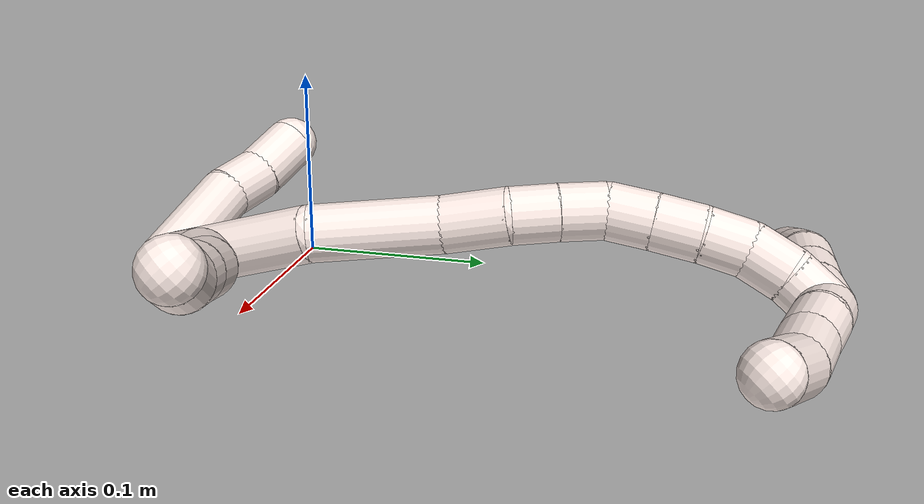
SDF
<sdf version="1.7">
 <world name="default">
  <model name="11">
   <static>0</static>
   <link name="11">
    <collision name="collision-cylinder-e_1_2_8">
     <pose>0.023417 0.009188 0.010127 -0.736849 1.04228 -0.436199</pose>
     <geometry><cylinder><radius>0.0125</radius><length>0.054235</length></cylinder></geometry>
     <surface>
      <friction><ode><mu>1.16</mu><mu2>1.16</mu2><slip1>0</slip1><slip2>0</slip2></ode></friction>
      <contact><ode><kp>1e+06</kp><kd>1</kd><max_vel>0</max_vel><min_depth>0.001</min_depth></ode></contact>
     </surface>
    </collision>
    <visual name="visual-cylinder-e_1_2_8">
     <pose>0.023417 0.009188 0.010127 -0.736849 1.04228 -0.436199</pose>
     <geometry><cylinder><radius>0.0125</radius><length>0.054235</length></cylinder></geometry>
     <material><ambient>1 0.933333 0.909804 1</ambient></material>
    </visual>
    <collision name="collision-cylinder-e_2_8_9">
     <pose>0.059232 0.023002 0.021881 -1.23251 1.19417 -0.897525</pose>
     <geometry><cylinder><radius>0.0125</radius><length>0.026663</length></cylinder></geometry>
     <surface>
      <friction><ode><mu>1.16</mu><mu2>1.16</mu2><slip1>0</slip1><slip2>0</slip2></ode></friction>
      <contact><ode><kp>1e+06</kp><kd>1</kd><max_vel>0</max_vel><min_depth>0.001</min_depth></ode></contact>
     </surface>
    </collision>
    <visual name="visual-cylinder-e_2_8_9">
     <pose>0.059232 0.023002 0.021881 -1.23251 1.19417 -0.897525</pose>
     <geometry><cylinder><radius>0.0125</radius><length>0.026663</length></cylinder></geometry>
     <material><ambient>1 0.933333 0.909804 1</ambient></material>
    </visual>
    <collision name="collision-cylinder-e_3_9_10">
     <pose>0.085764 0.029471 0.023245 -1.71219 1.43975 -1.58124</pose>
     <geometry><cylinder><radius>0.0125</radius><length>0.028516</length></cylinder></geometry>
     <surface>
      <friction><ode><mu>1.16</mu><mu2>1.16</mu2><slip1>0</slip1><slip2>0</slip2></ode></friction>
      <contact><ode><kp>1e+06</kp><kd>1</kd><max_vel>0</max_vel><min_depth>0.001</min_depth></ode></contact>
     </surface>
    </collision>
    <visual name="visual-cylinder-e_3_9_10">
     <pose>0.085764 0.029471 0.023245 -1.71219 1.43975 -1.58124</pose>
     <geometry><cylinder><radius>0.0125</radius><length>0.028516</length></cylinder></geometry>
     <material><ambient>1 0.933333 0.909804 1</ambient></material>
    </visual>
    <collision name="collision-cylinder-e_4_10_11">
     <pose>0.109905 0.032852 0.022522 -1.86215 1.41186 -1.70633</pose>
     <geometry><cylinder><radius>0.0125</radius><length>0.020265</length></cylinder></geometry>
     <surface>
      <friction><ode><mu>1.16</mu><mu2>1.16</mu2><slip1>0</slip1><slip2>0</slip2></ode></friction>
      <contact><ode><kp>1e+06</kp><kd>1</kd><max_vel>0</max_vel><min_depth>0.001</min_depth></ode></contact>
     </surface>
    </collision>
    <visual name="visual-cylinder-e_4_10_11">
     <pose>0.109905 0.032852 0.022522 -1.86215 1.41186 -1.70633</pose>
     <geometry><cylinder><radius>0.0125</radius><length>0.020265</length></cylinder></geometry>
     <material><ambient>1 0.933333 0.909804 1</ambient></material>
    </visual>
    <collision name="collision-cylinder-e_5_11_6">
     <pose>0.129947 0.033937 0.023573 0.289941 1.41489 0.248394</pose>
     <geometry><cylinder><radius>0.0125</radius><length>0.020322</length></cylinder></geometry>
     <surface>
      <friction><ode><mu>1.16</mu><mu2>1.16</mu2><slip1>0</slip1><slip2>0</slip2></ode></friction>
      <contact><ode><kp>1e+06</kp><kd>1</kd><max_vel>0</max_vel><min_depth>0.001</min_depth></ode></contact>
     </surface>
    </collision>
    <visual name="visual-cylinder-e_5_11_6">
     <pose>0.129947 0.033937 0.023573 0.289941 1.41489 0.248394</pose>
     <geometry><cylinder><radius>0.0125</radius><length>0.020322</length></cylinder></geometry>
     <material><ambient>1 0.933333 0.909804 1</ambient></material>
    </visual>
    <collision name="collision-cylinder-e_1_2_12">
     <pose>-0.018052 -0.006687 0.017897 0.357565 -0.757036 -0.14349</pose>
     <geometry><cylinder><radius>0.0125</radius><length>0.05257</length></cylinder></geometry>
     <surface>
      <friction><ode><mu>1.16</mu><mu2>1.16</mu2><slip1>0</slip1><slip2>0</slip2></ode></friction>
      <contact><ode><kp>1e+06</kp><kd>1</kd><max_vel>0</max_vel><min_depth>0.001</min_depth></ode></contact>
     </surface>
    </collision>
    <visual name="visual-cylinder-e_1_2_12">
     <pose>-0.018052 -0.006687 0.017897 0.357565 -0.757036 -0.14349</pose>
     <geometry><cylinder><radius>0.0125</radius><length>0.05257</length></cylinder></geometry>
     <material><ambient>1 0.933333 0.909804 1</ambient></material>
    </visual>
    <collision name="collision-cylinder-e_2_12_13">
     <pose>-0.043166 -0.013362 0.043865 -0.001497 -0.71889 0.000562</pose>
     <geometry><cylinder><radius>0.0125</radius><length>0.021449</length></cylinder></geometry>
     <surface>
      <friction><ode><mu>1.16</mu><mu2>1.16</mu2><slip1>0</slip1><slip2>0</slip2></ode></friction>
      <contact><ode><kp>1e+06</kp><kd>1</kd><max_vel>0</max_vel><min_depth>0.001</min_depth></ode></contact>
     </surface>
    </collision>
    <visual name="visual-cylinder-e_2_12_13">
     <pose>-0.043166 -0.013362 0.043865 -0.001497 -0.71889 0.000562</pose>
     <geometry><cylinder><radius>0.0125</radius><length>0.021449</length></cylinder></geometry>
     <material><ambient>1 0.933333 0.909804 1</ambient></material>
    </visual>
    <collision name="collision-cylinder-e_3_13_5">
     <pose>-0.057547 -0.015377 0.062476 0.190037 -0.598411 -0.05878</pose>
     <geometry><cylinder><radius>0.0125</radius><length>0.025981</length></cylinder></geometry>
     <surface>
      <friction><ode><mu>1.16</mu><mu2>1.16</mu2><slip1>0</slip1><slip2>0</slip2></ode></friction>
      <contact><ode><kp>1e+06</kp><kd>1</kd><max_vel>0</max_vel><min_depth>0.001</min_depth></ode></contact>
     </surface>
    </collision>
    <visual name="visual-cylinder-e_3_13_5">
     <pose>-0.057547 -0.015377 0.062476 0.190037 -0.598411 -0.05878</pose>
     <geometry><cylinder><radius>0.0125</radius><length>0.025981</length></cylinder></geometry>
     <material><ambient>1 0.933333 0.909804 1</ambient></material>
    </visual>
    <collision name="collision-cylinder-e_1_2_14">
     <pose>0.010941 0.018292 0.029014 -0.5625 0.308799 -0.08987</pose>
     <geometry><cylinder><radius>0.0125</radius><length>0.072003</length></cylinder></geometry>
     <surface>
      <friction><ode><mu>1.16</mu><mu2>1.16</mu2><slip1>0</slip1><slip2>0</slip2></ode></friction>
      <contact><ode><kp>1e+06</kp><kd>1</kd><max_vel>0</max_vel><min_depth>0.001</min_depth></ode></contact>
     </surface>
    </collision>
    <visual name="visual-cylinder-e_1_2_14">
     <pose>0.010941 0.018292 0.029014 -0.5625 0.308799 -0.08987</pose>
     <geometry><cylinder><radius>0.0125</radius><length>0.072003</length></cylinder></geometry>
     <material><ambient>1 0.933333 0.909804 1</ambient></material>
    </visual>
    <collision name="collision-cylinder-e_2_14_15">
     <pose>0.022152 0.054064 0.08052 -0.660699 0.00946 -0.003244</pose>
     <geometry><cylinder><radius>0.0125</radius><length>0.056975</length></cylinder></geometry>
     <surface>
      <friction><ode><mu>1.16</mu><mu2>1.16</mu2><slip1>0</slip1><slip2>0</slip2></ode></friction>
      <contact><ode><kp>1e+06</kp><kd>1</kd><max_vel>0</max_vel><min_depth>0.001</min_depth></ode></contact>
     </surface>
    </collision>
    <visual name="visual-cylinder-e_2_14_15">
     <pose>0.022152 0.054064 0.08052 -0.660699 0.00946 -0.003244</pose>
     <geometry><cylinder><radius>0.0125</radius><length>0.056975</length></cylinder></geometry>
     <material><ambient>1 0.933333 0.909804 1</ambient></material>
    </visual>
    <collision name="collision-cylinder-e_3_15_16">
     <pose>0.024576 0.07972 0.114658 -0.612007 0.150253 -0.047549</pose>
     <geometry><cylinder><radius>0.0125</radius><length>0.028781</length></cylinder></geometry>
     <surface>
      <friction><ode><mu>1.16</mu><mu2>1.16</mu2><slip1>0</slip1><slip2>0</slip2></ode></friction>
      <contact><ode><kp>1e+06</kp><kd>1</kd><max_vel>0</max_vel><min_depth>0.001</min_depth></ode></contact>
     </surface>
    </collision>
    <visual name="visual-cylinder-e_3_15_16">
     <pose>0.024576 0.07972 0.114658 -0.612007 0.150253 -0.047549</pose>
     <geometry><cylinder><radius>0.0125</radius><length>0.028781</length></cylinder></geometry>
     <material><ambient>1 0.933333 0.909804 1</ambient></material>
    </visual>
    <collision name="collision-cylinder-e_4_16_17">
     <pose>0.025891 0.094047 0.134395 -0.650104 -0.082331 0.02776</pose>
     <geometry><cylinder><radius>0.0125</radius><length>0.0204</length></cylinder></geometry>
     <surface>
      <friction><ode><mu>1.16</mu><mu2>1.16</mu2><slip1>0</slip1><slip2>0</slip2></ode></friction>
      <contact><ode><kp>1e+06</kp><kd>1</kd><max_vel>0</max_vel><min_depth>0.001</min_depth></ode></contact>
     </surface>
    </collision>
    <visual name="visual-cylinder-e_4_16_17">
     <pose>0.025891 0.094047 0.134395 -0.650104 -0.082331 0.02776</pose>
     <geometry><cylinder><radius>0.0125</radius><length>0.0204</length></cylinder></geometry>
     <material><ambient>1 0.933333 0.909804 1</ambient></material>
    </visual>
    <collision name="collision-cylinder-e_5_17_18">
     <pose>0.023997 0.106586 0.150362 -0.681372 -0.103732 0.036803</pose>
     <geometry><cylinder><radius>0.0125</radius><length>0.020387</length></cylinder></geometry>
     <surface>
      <friction><ode><mu>1.16</mu><mu2>1.16</mu2><slip1>0</slip1><slip2>0</slip2></ode></friction>
      <contact><ode><kp>1e+06</kp><kd>1</kd><max_vel>0</max_vel><min_depth>0.001</min_depth></ode></contact>
     </surface>
    </collision>
    <visual name="visual-cylinder-e_5_17_18">
     <pose>0.023997 0.106586 0.150362 -0.681372 -0.103732 0.036803</pose>
     <geometry><cylinder><radius>0.0125</radius><length>0.020387</length></cylinder></geometry>
     <material><ambient>1 0.933333 0.909804 1</ambient></material>
    </visual>
    <collision name="collision-cylinder-e_6_18_19">
     <pose>0.023728 0.121305 0.164042 -0.962341 0.077304 -0.040375</pose>
     <geometry><cylinder><radius>0.0125</radius><length>0.020372</length></cylinder></geometry>
     <surface>
      <friction><ode><mu>1.16</mu><mu2>1.16</mu2><slip1>0</slip1><slip2>0</slip2></ode></friction>
      <contact><ode><kp>1e+06</kp><kd>1</kd><max_vel>0</max_vel><min_depth>0.001</min_depth></ode></contact>
     </surface>
    </collision>
    <visual name="visual-cylinder-e_6_18_19">
     <pose>0.023728 0.121305 0.164042 -0.962341 0.077304 -0.040375</pose>
     <geometry><cylinder><radius>0.0125</radius><length>0.020372</length></cylinder></geometry>
     <material><ambient>1 0.933333 0.909804 1</ambient></material>
    </visual>
    <collision name="collision-cylinder-e_7_19_20">
     <pose>0.025193 0.138301 0.175499 -0.992696 0.065449 -0.035454</pose>
     <geometry><cylinder><radius>0.0125</radius><length>0.020732</length></cylinder></geometry>
     <surface>
      <friction><ode><mu>1.16</mu><mu2>1.16</mu2><slip1>0</slip1><slip2>0</slip2></ode></friction>
      <contact><ode><kp>1e+06</kp><kd>1</kd><max_vel>0</max_vel><min_depth>0.001</min_depth></ode></contact>
     </surface>
    </collision>
    <visual name="visual-cylinder-e_7_19_20">
     <pose>0.025193 0.138301 0.175499 -0.992696 0.065449 -0.035454</pose>
     <geometry><cylinder><radius>0.0125</radius><length>0.020732</length></cylinder></geometry>
     <material><ambient>1 0.933333 0.909804 1</ambient></material>
    </visual>
    <collision name="collision-cylinder-e_8_20_21">
     <pose>0.025482 0.155769 0.186228 -1.04779 -0.03817 0.022054</pose>
     <geometry><cylinder><radius>0.0125</radius><length>0.020344</length></cylinder></geometry>
     <surface>
      <friction><ode><mu>1.16</mu><mu2>1.16</mu2><slip1>0</slip1><slip2>0</slip2></ode></friction>
      <contact><ode><kp>1e+06</kp><kd>1</kd><max_vel>0</max_vel><min_depth>0.001</min_depth></ode></contact>
     </surface>
    </collision>
    <visual name="visual-cylinder-e_8_20_21">
     <pose>0.025482 0.155769 0.186228 -1.04779 -0.03817 0.022054</pose>
     <geometry><cylinder><radius>0.0125</radius><length>0.020344</length></cylinder></geometry>
     <material><ambient>1 0.933333 0.909804 1</ambient></material>
    </visual>
    <collision name="collision-cylinder-e_9_21_22">
     <pose>0.026627 0.174154 0.193746 -1.32136 0.153845 -0.11966</pose>
     <geometry><cylinder><radius>0.0125</radius><length>0.020005</length></cylinder></geometry>
     <surface>
      <friction><ode><mu>1.16</mu><mu2>1.16</mu2><slip1>0</slip1><slip2>0</slip2></ode></friction>
      <contact><ode><kp>1e+06</kp><kd>1</kd><max_vel>0</max_vel><min_depth>0.001</min_depth></ode></contact>
     </surface>
    </collision>
    <visual name="visual-cylinder-e_9_21_22">
     <pose>0.026627 0.174154 0.193746 -1.32136 0.153845 -0.11966</pose>
     <geometry><cylinder><radius>0.0125</radius><length>0.020005</length></cylinder></geometry>
     <material><ambient>1 0.933333 0.909804 1</ambient></material>
    </visual>
    <collision name="collision-cylinder-e_10_22_1">
     <pose>0.028578 0.19369 0.196999 -1.48928 0.041803 -0.038528</pose>
     <geometry><cylinder><radius>0.0125</radius><length>0.020001</length></cylinder></geometry>
     <surface>
      <friction><ode><mu>1.16</mu><mu2>1.16</mu2><slip1>0</slip1><slip2>0</slip2></ode></friction>
      <contact><ode><kp>1e+06</kp><kd>1</kd><max_vel>0</max_vel><min_depth>0.001</min_depth></ode></contact>
     </surface>
    </collision>
    <visual name="visual-cylinder-e_10_22_1">
     <pose>0.028578 0.19369 0.196999 -1.48928 0.041803 -0.038528</pose>
     <geometry><cylinder><radius>0.0125</radius><length>0.020001</length></cylinder></geometry>
     <material><ambient>1 0.933333 0.909804 1</ambient></material>
    </visual>
    <collision name="collision-cylinder-e_1_1_23">
     <pose>0.020014 0.200103 0.200414 0.937838 -1.11549 -0.612192</pose>
     <geometry><cylinder><radius>0.0125</radius><length>0.02</length></cylinder></geometry>
     <surface>
      <friction><ode><mu>1.16</mu><mu2>1.16</mu2><slip1>0</slip1><slip2>0</slip2></ode></friction>
      <contact><ode><kp>1e+06</kp><kd>1</kd><max_vel>0</max_vel><min_depth>0.001</min_depth></ode></contact>
     </surface>
    </collision>
    <visual name="visual-cylinder-e_1_1_23">
     <pose>0.020014 0.200103 0.200414 0.937838 -1.11549 -0.612192</pose>
     <geometry><cylinder><radius>0.0125</radius><length>0.02</length></cylinder></geometry>
     <material><ambient>1 0.933333 0.909804 1</ambient></material>
    </visual>
    <collision name="collision-cylinder-e_2_23_24">
     <pose>0.001824 0.194246 0.206153 0.634844 -1.17039 -0.428691</pose>
     <geometry><cylinder><radius>0.0125</radius><length>0.02</length></cylinder></geometry>
     <surface>
      <friction><ode><mu>1.16</mu><mu2>1.16</mu2><slip1>0</slip1><slip2>0</slip2></ode></friction>
      <contact><ode><kp>1e+06</kp><kd>1</kd><max_vel>0</max_vel><min_depth>0.001</min_depth></ode></contact>
     </surface>
    </collision>
    <visual name="visual-cylinder-e_2_23_24">
     <pose>0.001824 0.194246 0.206153 0.634844 -1.17039 -0.428691</pose>
     <geometry><cylinder><radius>0.0125</radius><length>0.02</length></cylinder></geometry>
     <material><ambient>1 0.933333 0.909804 1</ambient></material>
    </visual>
    <collision name="collision-cylinder-e_3_24_25">
     <pose>-0.016658 0.189793 0.212364 0.608959 -1.18697 -0.417813</pose>
     <geometry><cylinder><radius>0.0125</radius><length>0.02</length></cylinder></geometry>
     <surface>
      <friction><ode><mu>1.16</mu><mu2>1.16</mu2><slip1>0</slip1><slip2>0</slip2></ode></friction>
      <contact><ode><kp>1e+06</kp><kd>1</kd><max_vel>0</max_vel><min_depth>0.001</min_depth></ode></contact>
     </surface>
    </collision>
    <visual name="visual-cylinder-e_3_24_25">
     <pose>-0.016658 0.189793 0.212364 0.608959 -1.18697 -0.417813</pose>
     <geometry><cylinder><radius>0.0125</radius><length>0.02</length></cylinder></geometry>
     <material><ambient>1 0.933333 0.909804 1</ambient></material>
    </visual>
    <collision name="collision-cylinder-e_4_25_26">
     <pose>-0.035861 0.186862 0.2163 0.73908 -1.4535 -0.663304</pose>
     <geometry><cylinder><radius>0.0125</radius><length>0.02</length></cylinder></geometry>
     <surface>
      <friction><ode><mu>1.16</mu><mu2>1.16</mu2><slip1>0</slip1><slip2>0</slip2></ode></friction>
      <contact><ode><kp>1e+06</kp><kd>1</kd><max_vel>0</max_vel><min_depth>0.001</min_depth></ode></contact>
     </surface>
    </collision>
    <visual name="visual-cylinder-e_4_25_26">
     <pose>-0.035861 0.186862 0.2163 0.73908 -1.4535 -0.663304</pose>
     <geometry><cylinder><radius>0.0125</radius><length>0.02</length></cylinder></geometry>
     <material><ambient>1 0.933333 0.909804 1</ambient></material>
    </visual>
    <collision name="collision-cylinder-e_5_26_4">
     <pose>-0.055743 0.185255 0.21773 0.967015 -1.47116 -0.887232</pose>
     <geometry><cylinder><radius>0.0125</radius><length>0.02</length></cylinder></geometry>
     <surface>
      <friction><ode><mu>1.16</mu><mu2>1.16</mu2><slip1>0</slip1><slip2>0</slip2></ode></friction>
      <contact><ode><kp>1e+06</kp><kd>1</kd><max_vel>0</max_vel><min_depth>0.001</min_depth></ode></contact>
     </surface>
    </collision>
    <visual name="visual-cylinder-e_5_26_4">
     <pose>-0.055743 0.185255 0.21773 0.967015 -1.47116 -0.887232</pose>
     <geometry><cylinder><radius>0.0125</radius><length>0.02</length></cylinder></geometry>
     <material><ambient>1 0.933333 0.909804 1</ambient></material>
    </visual>
    <collision name="collision-cylinder-e_1_1_27">
     <pose>0.038977 0.203104 0.193785 3.0072 1.18414 2.94213</pose>
     <geometry><cylinder><radius>0.0125</radius><length>0.021554</length></cylinder></geometry>
     <surface>
      <friction><ode><mu>1.16</mu><mu2>1.16</mu2><slip1>0</slip1><slip2>0</slip2></ode></friction>
      <contact><ode><kp>1e+06</kp><kd>1</kd><max_vel>0</max_vel><min_depth>0.001</min_depth></ode></contact>
     </surface>
    </collision>
    <visual name="visual-cylinder-e_1_1_27">
     <pose>0.038977 0.203104 0.193785 3.0072 1.18414 2.94213</pose>
     <geometry><cylinder><radius>0.0125</radius><length>0.021554</length></cylinder></geometry>
     <material><ambient>1 0.933333 0.909804 1</ambient></material>
    </visual>
    <collision name="collision-cylinder-e_2_27_28">
     <pose>0.058317 0.202682 0.183656 -3.12158 0.992919 -3.10465</pose>
     <geometry><cylinder><radius>0.0125</radius><length>0.022346</length></cylinder></geometry>
     <surface>
      <friction><ode><mu>1.16</mu><mu2>1.16</mu2><slip1>0</slip1><slip2>0</slip2></ode></friction>
      <contact><ode><kp>1e+06</kp><kd>1</kd><max_vel>0</max_vel><min_depth>0.001</min_depth></ode></contact>
     </surface>
    </collision>
    <visual name="visual-cylinder-e_2_27_28">
     <pose>0.058317 0.202682 0.183656 -3.12158 0.992919 -3.10465</pose>
     <geometry><cylinder><radius>0.0125</radius><length>0.022346</length></cylinder></geometry>
     <material><ambient>1 0.933333 0.909804 1</ambient></material>
    </visual>
    <collision name="collision-cylinder-e_3_28_29">
     <pose>0.079657 0.202817 0.171309 -3.13947 1.09028 -3.1381</pose>
     <geometry><cylinder><radius>0.0125</radius><length>0.027023</length></cylinder></geometry>
     <surface>
      <friction><ode><mu>1.16</mu><mu2>1.16</mu2><slip1>0</slip1><slip2>0</slip2></ode></friction>
      <contact><ode><kp>1e+06</kp><kd>1</kd><max_vel>0</max_vel><min_depth>0.001</min_depth></ode></contact>
     </surface>
    </collision>
    <visual name="visual-cylinder-e_3_28_29">
     <pose>0.079657 0.202817 0.171309 -3.13947 1.09028 -3.1381</pose>
     <geometry><cylinder><radius>0.0125</radius><length>0.027023</length></cylinder></geometry>
     <material><ambient>1 0.933333 0.909804 1</ambient></material>
    </visual>
    <collision name="collision-cylinder-e_4_29_3">
     <pose>0.104585 0.199163 0.159558 2.55381 1.09842 2.22309</pose>
     <geometry><cylinder><radius>0.0125</radius><length>0.029077</length></cylinder></geometry>
     <surface>
      <friction><ode><mu>1.16</mu><mu2>1.16</mu2><slip1>0</slip1><slip2>0</slip2></ode></friction>
      <contact><ode><kp>1e+06</kp><kd>1</kd><max_vel>0</max_vel><min_depth>0.001</min_depth></ode></contact>
     </surface>
    </collision>
    <visual name="visual-cylinder-e_4_29_3">
     <pose>0.104585 0.199163 0.159558 2.55381 1.09842 2.22309</pose>
     <geometry><cylinder><radius>0.0125</radius><length>0.029077</length></cylinder></geometry>
     <material><ambient>1 0.933333 0.909804 1</ambient></material>
    </visual>
    <collision name="collision-sphere-3">
     <pose>0.117531 0.195494 0.154053 0 -0 0</pose>
     <geometry><sphere><radius>0.0125</radius></sphere></geometry>
     <surface>
      <friction><ode><mu>1.16</mu><mu2>1.16</mu2><slip1>0</slip1><slip2>0</slip2></ode></friction>
      <contact><ode><kp>1e+06</kp><kd>1</kd><max_vel>0</max_vel><min_depth>0.001</min_depth></ode></contact>
     </surface>
    </collision>
    <visual name="visual-sphere-3">
     <pose>0.117531 0.195494 0.154053 0 -0 0</pose>
     <geometry><sphere><radius>0.0125</radius></sphere></geometry>
     <material><ambient>1 0.933333 0.909804 1</ambient></material>
    </visual>
    <collision name="collision-sphere-29">
     <pose>0.091638 0.202831 0.165063 0 -0 0</pose>
     <geometry><sphere><radius>0.0125</radius></sphere></geometry>
     <surface>
      <friction><ode><mu>1.16</mu><mu2>1.16</mu2><slip1>0</slip1><slip2>0</slip2></ode></friction>
      <contact><ode><kp>1e+06</kp><kd>1</kd><max_vel>0</max_vel><min_depth>0.001</min_depth></ode></contact>
     </surface>
    </collision>
    <visual name="visual-sphere-29">
     <pose>0.091638 0.202831 0.165063 0 -0 0</pose>
     <geometry><sphere><radius>0.0125</radius></sphere></geometry>
     <material><ambient>1 0.933333 0.909804 1</ambient></material>
    </visual>
    <collision name="collision-sphere-28">
     <pose>0.067676 0.202804 0.177554 0 -0 0</pose>
     <geometry><sphere><radius>0.0125</radius></sphere></geometry>
     <surface>
      <friction><ode><mu>1.16</mu><mu2>1.16</mu2><slip1>0</slip1><slip2>0</slip2></ode></friction>
      <contact><ode><kp>1e+06</kp><kd>1</kd><max_vel>0</max_vel><min_depth>0.001</min_depth></ode></contact>
     </surface>
    </collision>
    <visual name="visual-sphere-28">
     <pose>0.067676 0.202804 0.177554 0 -0 0</pose>
     <geometry><sphere><radius>0.0125</radius></sphere></geometry>
     <material><ambient>1 0.933333 0.909804 1</ambient></material>
    </visual>
    <collision name="collision-sphere-27">
     <pose>0.048958 0.20256 0.189758 0 -0 0</pose>
     <geometry><sphere><radius>0.0125</radius></sphere></geometry>
     <surface>
      <friction><ode><mu>1.16</mu><mu2>1.16</mu2><slip1>0</slip1><slip2>0</slip2></ode></friction>
      <contact><ode><kp>1e+06</kp><kd>1</kd><max_vel>0</max_vel><min_depth>0.001</min_depth></ode></contact>
     </surface>
    </collision>
    <visual name="visual-sphere-27">
     <pose>0.048958 0.20256 0.189758 0 -0 0</pose>
     <geometry><sphere><radius>0.0125</radius></sphere></geometry>
     <material><ambient>1 0.933333 0.909804 1</ambient></material>
    </visual>
    <collision name="collision-sphere-4">
     <pose>-0.065693 0.184436 0.218294 0 -0 0</pose>
     <geometry><sphere><radius>0.0125</radius></sphere></geometry>
     <surface>
      <friction><ode><mu>1.16</mu><mu2>1.16</mu2><slip1>0</slip1><slip2>0</slip2></ode></friction>
      <contact><ode><kp>1e+06</kp><kd>1</kd><max_vel>0</max_vel><min_depth>0.001</min_depth></ode></contact>
     </surface>
    </collision>
    <visual name="visual-sphere-4">
     <pose>-0.065693 0.184436 0.218294 0 -0 0</pose>
     <geometry><sphere><radius>0.0125</radius></sphere></geometry>
     <material><ambient>1 0.933333 0.909804 1</ambient></material>
    </visual>
    <collision name="collision-sphere-26">
     <pose>-0.045792 0.186074 0.217165 0 -0 0</pose>
     <geometry><sphere><radius>0.0125</radius></sphere></geometry>
     <surface>
      <friction><ode><mu>1.16</mu><mu2>1.16</mu2><slip1>0</slip1><slip2>0</slip2></ode></friction>
      <contact><ode><kp>1e+06</kp><kd>1</kd><max_vel>0</max_vel><min_depth>0.001</min_depth></ode></contact>
     </surface>
    </collision>
    <visual name="visual-sphere-26">
     <pose>-0.045792 0.186074 0.217165 0 -0 0</pose>
     <geometry><sphere><radius>0.0125</radius></sphere></geometry>
     <material><ambient>1 0.933333 0.909804 1</ambient></material>
    </visual>
    <collision name="collision-sphere-25">
     <pose>-0.02593 0.187651 0.215435 0 -0 0</pose>
     <geometry><sphere><radius>0.0125</radius></sphere></geometry>
     <surface>
      <friction><ode><mu>1.16</mu><mu2>1.16</mu2><slip1>0</slip1><slip2>0</slip2></ode></friction>
      <contact><ode><kp>1e+06</kp><kd>1</kd><max_vel>0</max_vel><min_depth>0.001</min_depth></ode></contact>
     </surface>
    </collision>
    <visual name="visual-sphere-25">
     <pose>-0.02593 0.187651 0.215435 0 -0 0</pose>
     <geometry><sphere><radius>0.0125</radius></sphere></geometry>
     <material><ambient>1 0.933333 0.909804 1</ambient></material>
    </visual>
    <collision name="collision-sphere-24">
     <pose>-0.007385 0.191935 0.209292 0 -0 0</pose>
     <geometry><sphere><radius>0.0125</radius></sphere></geometry>
     <surface>
      <friction><ode><mu>1.16</mu><mu2>1.16</mu2><slip1>0</slip1><slip2>0</slip2></ode></friction>
      <contact><ode><kp>1e+06</kp><kd>1</kd><max_vel>0</max_vel><min_depth>0.001</min_depth></ode></contact>
     </surface>
    </collision>
    <visual name="visual-sphere-24">
     <pose>-0.007385 0.191935 0.209292 0 -0 0</pose>
     <geometry><sphere><radius>0.0125</radius></sphere></geometry>
     <material><ambient>1 0.933333 0.909804 1</ambient></material>
    </visual>
    <collision name="collision-sphere-23">
     <pose>0.011033 0.196558 0.203015 0 -0 0</pose>
     <geometry><sphere><radius>0.0125</radius></sphere></geometry>
     <surface>
      <friction><ode><mu>1.16</mu><mu2>1.16</mu2><slip1>0</slip1><slip2>0</slip2></ode></friction>
      <contact><ode><kp>1e+06</kp><kd>1</kd><max_vel>0</max_vel><min_depth>0.001</min_depth></ode></contact>
     </surface>
    </collision>
    <visual name="visual-sphere-23">
     <pose>0.011033 0.196558 0.203015 0 -0 0</pose>
     <geometry><sphere><radius>0.0125</radius></sphere></geometry>
     <material><ambient>1 0.933333 0.909804 1</ambient></material>
    </visual>
    <collision name="collision-sphere-1">
     <pose>0.028995 0.203649 0.197813 0 -0 0</pose>
     <geometry><sphere><radius>0.0125</radius></sphere></geometry>
     <surface>
      <friction><ode><mu>1.16</mu><mu2>1.16</mu2><slip1>0</slip1><slip2>0</slip2></ode></friction>
      <contact><ode><kp>1e+06</kp><kd>1</kd><max_vel>0</max_vel><min_depth>0.001</min_depth></ode></contact>
     </surface>
    </collision>
    <visual name="visual-sphere-1">
     <pose>0.028995 0.203649 0.197813 0 -0 0</pose>
     <geometry><sphere><radius>0.0125</radius></sphere></geometry>
     <material><ambient>1 0.933333 0.909804 1</ambient></material>
    </visual>
    <collision name="collision-sphere-22">
     <pose>0.02816 0.183732 0.196186 0 -0 0</pose>
     <geometry><sphere><radius>0.0125</radius></sphere></geometry>
     <surface>
      <friction><ode><mu>1.16</mu><mu2>1.16</mu2><slip1>0</slip1><slip2>0</slip2></ode></friction>
      <contact><ode><kp>1e+06</kp><kd>1</kd><max_vel>0</max_vel><min_depth>0.001</min_depth></ode></contact>
     </surface>
    </collision>
    <visual name="visual-sphere-22">
     <pose>0.02816 0.183732 0.196186 0 -0 0</pose>
     <geometry><sphere><radius>0.0125</radius></sphere></geometry>
     <material><ambient>1 0.933333 0.909804 1</ambient></material>
    </visual>
    <collision name="collision-sphere-21">
     <pose>0.025094 0.164575 0.191306 0 -0 0</pose>
     <geometry><sphere><radius>0.0125</radius></sphere></geometry>
     <surface>
      <friction><ode><mu>1.16</mu><mu2>1.16</mu2><slip1>0</slip1><slip2>0</slip2></ode></friction>
      <contact><ode><kp>1e+06</kp><kd>1</kd><max_vel>0</max_vel><min_depth>0.001</min_depth></ode></contact>
     </surface>
    </collision>
    <visual name="visual-sphere-21">
     <pose>0.025094 0.164575 0.191306 0 -0 0</pose>
     <geometry><sphere><radius>0.0125</radius></sphere></geometry>
     <material><ambient>1 0.933333 0.909804 1</ambient></material>
    </visual>
    <collision name="collision-sphere-6">
     <pose>0.139985 0.033486 0.025085 0 -0 0</pose>
     <geometry><sphere><radius>0.0125</radius></sphere></geometry>
     <surface>
      <friction><ode><mu>1.16</mu><mu2>1.16</mu2><slip1>0</slip1><slip2>0</slip2></ode></friction>
      <contact><ode><kp>1e+06</kp><kd>1</kd><max_vel>0</max_vel><min_depth>0.001</min_depth></ode></contact>
     </surface>
    </collision>
    <visual name="visual-sphere-6">
     <pose>0.139985 0.033486 0.025085 0 -0 0</pose>
     <geometry><sphere><radius>0.0125</radius></sphere></geometry>
     <material><ambient>1 0.933333 0.909804 1</ambient></material>
    </visual>
    <collision name="collision-sphere-11">
     <pose>0.11991 0.034388 0.022061 0 -0 0</pose>
     <geometry><sphere><radius>0.0125</radius></sphere></geometry>
     <surface>
      <friction><ode><mu>1.16</mu><mu2>1.16</mu2><slip1>0</slip1><slip2>0</slip2></ode></friction>
      <contact><ode><kp>1e+06</kp><kd>1</kd><max_vel>0</max_vel><min_depth>0.001</min_depth></ode></contact>
     </surface>
    </collision>
    <visual name="visual-sphere-11">
     <pose>0.11991 0.034388 0.022061 0 -0 0</pose>
     <geometry><sphere><radius>0.0125</radius></sphere></geometry>
     <material><ambient>1 0.933333 0.909804 1</ambient></material>
    </visual>
    <collision name="collision-sphere-10">
     <pose>0.0999 0.031316 0.022983 0 -0 0</pose>
     <geometry><sphere><radius>0.0125</radius></sphere></geometry>
     <surface>
      <friction><ode><mu>1.16</mu><mu2>1.16</mu2><slip1>0</slip1><slip2>0</slip2></ode></friction>
      <contact><ode><kp>1e+06</kp><kd>1</kd><max_vel>0</max_vel><min_depth>0.001</min_depth></ode></contact>
     </surface>
    </collision>
    <visual name="visual-sphere-10">
     <pose>0.0999 0.031316 0.022983 0 -0 0</pose>
     <geometry><sphere><radius>0.0125</radius></sphere></geometry>
     <material><ambient>1 0.933333 0.909804 1</ambient></material>
    </visual>
    <collision name="collision-sphere-9">
     <pose>0.071629 0.027627 0.023508 0 -0 0</pose>
     <geometry><sphere><radius>0.0125</radius></sphere></geometry>
     <surface>
      <friction><ode><mu>1.16</mu><mu2>1.16</mu2><slip1>0</slip1><slip2>0</slip2></ode></friction>
      <contact><ode><kp>1e+06</kp><kd>1</kd><max_vel>0</max_vel><min_depth>0.001</min_depth></ode></contact>
     </surface>
    </collision>
    <visual name="visual-sphere-9">
     <pose>0.071629 0.027627 0.023508 0 -0 0</pose>
     <geometry><sphere><radius>0.0125</radius></sphere></geometry>
     <material><ambient>1 0.933333 0.909804 1</ambient></material>
    </visual>
    <collision name="collision-sphere-2">
     <geometry><sphere><radius>0.0125</radius></sphere></geometry>
     <surface>
      <friction><ode><mu>1.16</mu><mu2>1.16</mu2><slip1>0</slip1><slip2>0</slip2></ode></friction>
      <contact><ode><kp>1e+06</kp><kd>1</kd><max_vel>0</max_vel><min_depth>0.001</min_depth></ode></contact>
     </surface>
    </collision>
    <visual name="visual-sphere-2">
     <geometry><sphere><radius>0.0125</radius></sphere></geometry>
     <material><ambient>1 0.933333 0.909804 1</ambient></material>
    </visual>
    <collision name="collision-sphere-19">
     <pose>0.024515 0.129638 0.169847 0 -0 0</pose>
     <geometry><sphere><radius>0.0125</radius></sphere></geometry>
     <surface>
      <friction><ode><mu>1.16</mu><mu2>1.16</mu2><slip1>0</slip1><slip2>0</slip2></ode></friction>
      <contact><ode><kp>1e+06</kp><kd>1</kd><max_vel>0</max_vel><min_depth>0.001</min_depth></ode></contact>
     </surface>
    </collision>
    <visual name="visual-sphere-19">
     <pose>0.024515 0.129638 0.169847 0 -0 0</pose>
     <geometry><sphere><radius>0.0125</radius></sphere></geometry>
     <material><ambient>1 0.933333 0.909804 1</ambient></material>
    </visual>
    <collision name="collision-sphere-8">
     <pose>0.046835 0.018377 0.020253 0 -0 0</pose>
     <geometry><sphere><radius>0.0125</radius></sphere></geometry>
     <surface>
      <friction><ode><mu>1.16</mu><mu2>1.16</mu2><slip1>0</slip1><slip2>0</slip2></ode></friction>
      <contact><ode><kp>1e+06</kp><kd>1</kd><max_vel>0</max_vel><min_depth>0.001</min_depth></ode></contact>
     </surface>
    </collision>
    <visual name="visual-sphere-8">
     <pose>0.046835 0.018377 0.020253 0 -0 0</pose>
     <geometry><sphere><radius>0.0125</radius></sphere></geometry>
     <material><ambient>1 0.933333 0.909804 1</ambient></material>
    </visual>
    <collision name="collision-sphere-12">
     <pose>-0.036103 -0.013374 0.035795 0 -0 0</pose>
     <geometry><sphere><radius>0.0125</radius></sphere></geometry>
     <surface>
      <friction><ode><mu>1.16</mu><mu2>1.16</mu2><slip1>0</slip1><slip2>0</slip2></ode></friction>
      <contact><ode><kp>1e+06</kp><kd>1</kd><max_vel>0</max_vel><min_depth>0.001</min_depth></ode></contact>
     </surface>
    </collision>
    <visual name="visual-sphere-12">
     <pose>-0.036103 -0.013374 0.035795 0 -0 0</pose>
     <geometry><sphere><radius>0.0125</radius></sphere></geometry>
     <material><ambient>1 0.933333 0.909804 1</ambient></material>
    </visual>
    <collision name="collision-sphere-13">
     <pose>-0.050229 -0.01335 0.051936 0 -0 0</pose>
     <geometry><sphere><radius>0.0125</radius></sphere></geometry>
     <surface>
      <friction><ode><mu>1.16</mu><mu2>1.16</mu2><slip1>0</slip1><slip2>0</slip2></ode></friction>
      <contact><ode><kp>1e+06</kp><kd>1</kd><max_vel>0</max_vel><min_depth>0.001</min_depth></ode></contact>
     </surface>
    </collision>
    <visual name="visual-sphere-13">
     <pose>-0.050229 -0.01335 0.051936 0 -0 0</pose>
     <geometry><sphere><radius>0.0125</radius></sphere></geometry>
     <material><ambient>1 0.933333 0.909804 1</ambient></material>
    </visual>
    <collision name="collision-sphere-5">
     <pose>-0.064865 -0.017405 0.073016 0 -0 0</pose>
     <geometry><sphere><radius>0.0125</radius></sphere></geometry>
     <surface>
      <friction><ode><mu>1.16</mu><mu2>1.16</mu2><slip1>0</slip1><slip2>0</slip2></ode></friction>
      <contact><ode><kp>1e+06</kp><kd>1</kd><max_vel>0</max_vel><min_depth>0.001</min_depth></ode></contact>
     </surface>
    </collision>
    <visual name="visual-sphere-5">
     <pose>-0.064865 -0.017405 0.073016 0 -0 0</pose>
     <geometry><sphere><radius>0.0125</radius></sphere></geometry>
     <material><ambient>1 0.933333 0.909804 1</ambient></material>
    </visual>
    <collision name="collision-sphere-14">
     <pose>0.021883 0.036583 0.058028 0 -0 0</pose>
     <geometry><sphere><radius>0.0125</radius></sphere></geometry>
     <surface>
      <friction><ode><mu>1.16</mu><mu2>1.16</mu2><slip1>0</slip1><slip2>0</slip2></ode></friction>
      <contact><ode><kp>1e+06</kp><kd>1</kd><max_vel>0</max_vel><min_depth>0.001</min_depth></ode></contact>
     </surface>
    </collision>
    <visual name="visual-sphere-14">
     <pose>0.021883 0.036583 0.058028 0 -0 0</pose>
     <geometry><sphere><radius>0.0125</radius></sphere></geometry>
     <material><ambient>1 0.933333 0.909804 1</ambient></material>
    </visual>
    <collision name="collision-sphere-15">
     <pose>0.022422 0.071546 0.103012 0 -0 0</pose>
     <geometry><sphere><radius>0.0125</radius></sphere></geometry>
     <surface>
      <friction><ode><mu>1.16</mu><mu2>1.16</mu2><slip1>0</slip1><slip2>0</slip2></ode></friction>
      <contact><ode><kp>1e+06</kp><kd>1</kd><max_vel>0</max_vel><min_depth>0.001</min_depth></ode></contact>
     </surface>
    </collision>
    <visual name="visual-sphere-15">
     <pose>0.022422 0.071546 0.103012 0 -0 0</pose>
     <geometry><sphere><radius>0.0125</radius></sphere></geometry>
     <material><ambient>1 0.933333 0.909804 1</ambient></material>
    </visual>
    <collision name="collision-sphere-16">
     <pose>0.02673 0.087894 0.126304 0 -0 0</pose>
     <geometry><sphere><radius>0.0125</radius></sphere></geometry>
     <surface>
      <friction><ode><mu>1.16</mu><mu2>1.16</mu2><slip1>0</slip1><slip2>0</slip2></ode></friction>
      <contact><ode><kp>1e+06</kp><kd>1</kd><max_vel>0</max_vel><min_depth>0.001</min_depth></ode></contact>
     </surface>
    </collision>
    <visual name="visual-sphere-16">
     <pose>0.02673 0.087894 0.126304 0 -0 0</pose>
     <geometry><sphere><radius>0.0125</radius></sphere></geometry>
     <material><ambient>1 0.933333 0.909804 1</ambient></material>
    </visual>
    <collision name="collision-sphere-17">
     <pose>0.025052 0.1002 0.142487 0 -0 0</pose>
     <geometry><sphere><radius>0.0125</radius></sphere></geometry>
     <surface>
      <friction><ode><mu>1.16</mu><mu2>1.16</mu2><slip1>0</slip1><slip2>0</slip2></ode></friction>
      <contact><ode><kp>1e+06</kp><kd>1</kd><max_vel>0</max_vel><min_depth>0.001</min_depth></ode></contact>
     </surface>
    </collision>
    <visual name="visual-sphere-17">
     <pose>0.025052 0.1002 0.142487 0 -0 0</pose>
     <geometry><sphere><radius>0.0125</radius></sphere></geometry>
     <material><ambient>1 0.933333 0.909804 1</ambient></material>
    </visual>
    <collision name="collision-sphere-18">
     <pose>0.022941 0.112972 0.158237 0 -0 0</pose>
     <geometry><sphere><radius>0.0125</radius></sphere></geometry>
     <surface>
      <friction><ode><mu>1.16</mu><mu2>1.16</mu2><slip1>0</slip1><slip2>0</slip2></ode></friction>
      <contact><ode><kp>1e+06</kp><kd>1</kd><max_vel>0</max_vel><min_depth>0.001</min_depth></ode></contact>
     </surface>
    </collision>
    <visual name="visual-sphere-18">
     <pose>0.022941 0.112972 0.158237 0 -0 0</pose>
     <geometry><sphere><radius>0.0125</radius></sphere></geometry>
     <material><ambient>1 0.933333 0.909804 1</ambient></material>
    </visual>
    <collision name="collision-sphere-20">
     <pose>0.02587 0.146963 0.181151 0 -0 0</pose>
     <geometry><sphere><radius>0.0125</radius></sphere></geometry>
     <surface>
      <friction><ode><mu>1.16</mu><mu2>1.16</mu2><slip1>0</slip1><slip2>0</slip2></ode></friction>
      <contact><ode><kp>1e+06</kp><kd>1</kd><max_vel>0</max_vel><min_depth>0.001</min_depth></ode></contact>
     </surface>
    </collision>
    <visual name="visual-sphere-20">
     <pose>0.02587 0.146963 0.181151 0 -0 0</pose>
     <geometry><sphere><radius>0.0125</radius></sphere></geometry>
     <material><ambient>1 0.933333 0.909804 1</ambient></material>
    </visual>
    <inertial>
     <pose>0.025072 0.090963 0.105618 0 -0 0</pose>
     <mass>0.75</mass>
     <inertia><ixx>8.1e-05</ixx><ixy>0</ixy><ixz>0</ixz><iyy>0.000113</iyy><iyz>0</iyz><izz>-4e-05</izz></inertia>
    </inertial>
   </link>
   <pose>0.165039 -0.003035 0.05035 -0.829845 -0.394675 0.207347</pose>
  </model>
 </world>
</sdf>
